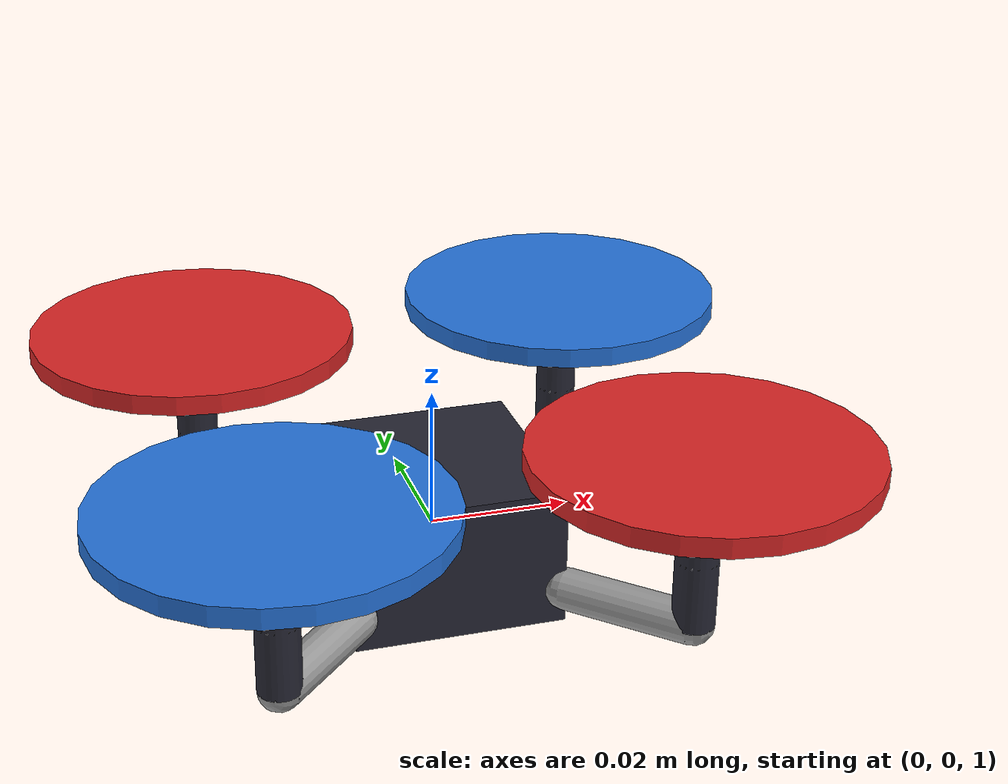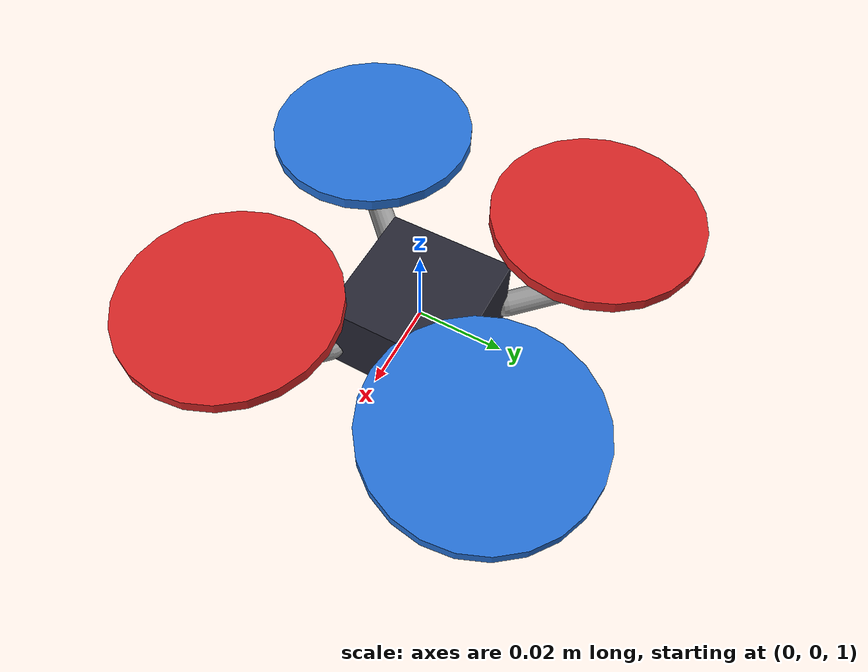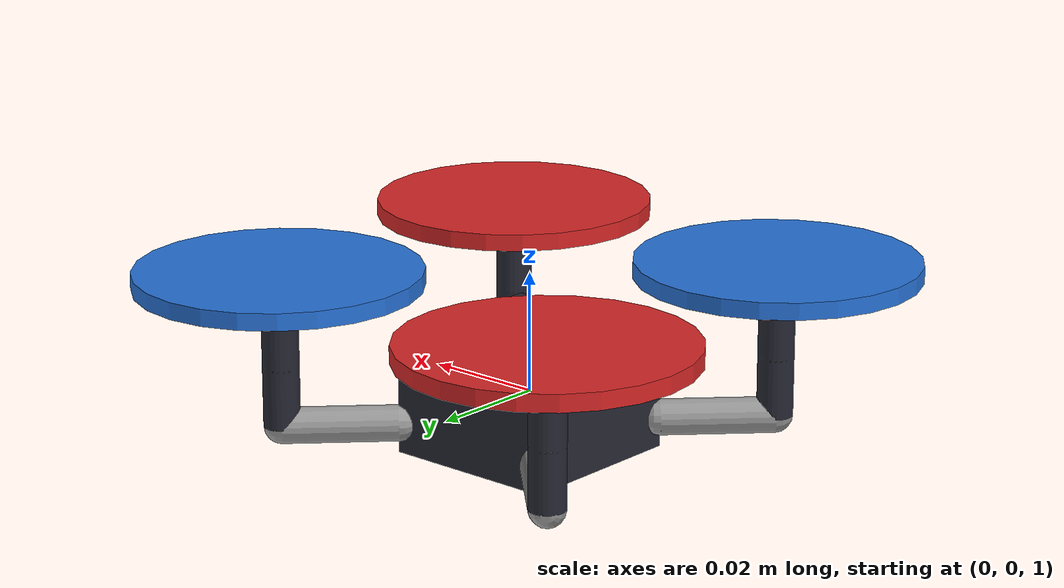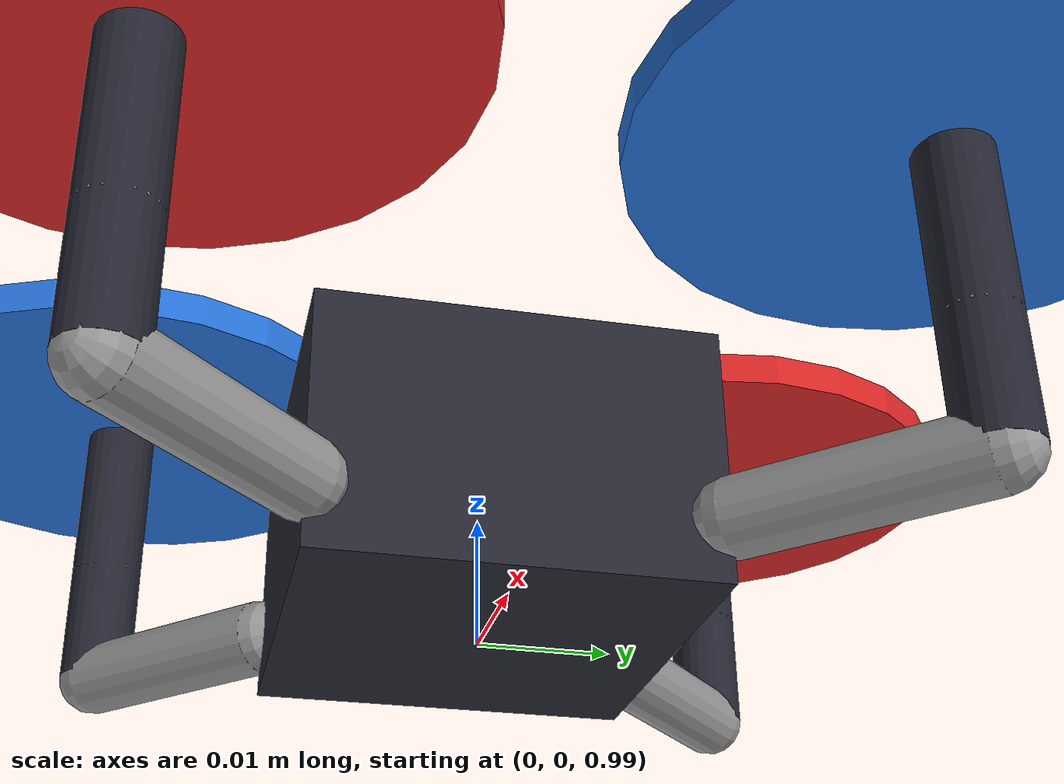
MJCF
<mujoco model="quadcopter">
  <compiler angle="degree" autolimits="true"/>
  <option timestep="0.002" gravity="0 0 -9.81" density="1.225" viscosity="1.8e-5" integrator="RK4"/>

  <asset>
    <texture type="skybox" builtin="gradient" rgb1="0.3 0.5 0.7" rgb2="0 0 0" width="512" height="512"/>
    <texture name="grid" type="2d" builtin="checker" rgb1="0.1 0.2 0.3" rgb2="0.2 0.3 0.4" width="300" height="300"/>
    <material name="grid" texture="grid" texrepeat="10 10" reflectance="0.2"/>
    <material name="body_mat" rgba="0.15 0.15 0.2 1"/>
    <material name="arm_mat" rgba="0.6 0.6 0.6 1"/>
    <material name="cw_mat" rgba="0.85 0.15 0.15 0.9"/>
    <material name="ccw_mat" rgba="0.15 0.45 0.85 0.9"/>
  </asset>

  <default>
    <default class="arm">
      <geom type="capsule" size="0.003" material="arm_mat" mass="0.002"/>
    </default>
    <default class="rotor">
      <geom type="cylinder" size="0.0235 0.0014" mass="0.0005" contype="0" conaffinity="0"/>
    </default>
    <default class="motor">
      <geom type="cylinder" size="0.003 0.013" mass="0.001" contype="0" conaffinity="0"/>
      <motor ctrlrange="0 1.5" ctrllimited="true"/>
    </default>
  </default>

  <worldbody>
    <light pos="0 0 6" dir="0 0 -1" diffuse="0.9 0.9 0.9"/>
    <geom name="floor" type="plane" size="15 15 0.1" material="grid"/>

    <body name="quad" pos="0 0 1">
      <freejoint name="root"/>
      <inertial pos="0 0 0" mass="0.029" diaginertia="1.4e-5 1.4e-5 2.17e-5"/>

      <geom name="core" type="box" size="0.015 0.015 0.01" material="body_mat"/>
      <site name="imu" pos="0 0 0" size="0.005"/>
      <camera name="chase" pos="-0.8 0 0.4" xyaxes="0 -1 0 0.4 0 1" mode="track"/>

      <!-- arms: layout, motor 1 front-right (CCW), 2 back-left (CCW), 3 front-left (CW), 4 back-right (CW) -->
      <geom class="arm" fromto="0.015 0.015 -0.005  0.028325 0.028325 -0.005"/>
      <geom class="arm" fromto="-0.015 -0.015 -0.005 -0.028325 -0.028325 -0.005"/>
      <geom class="arm" fromto="-0.015 0.015 -0.005 -0.028325  0.028325 -0.005"/>
      <geom class="arm" fromto="0.015 -0.015 -0.005  0.028325 -0.028325 -0.005"/>

      <site name="motor1" pos="0.028325  0.028325 0.005" size="0.003"/>
      <site name="motor2" pos="-0.028325 -0.028325 0.005" size="0.003"/>
      <site name="motor3" pos="-0.028325 0.028325 0.005" size="0.003"/>
      <site name="motor4" pos="0.028325 -0.028325 0.005" size="0.003"/>

      <geom class="rotor" pos="0.028325 0.028325 0.02" material="ccw_mat"/>
      <geom class="rotor" pos="-0.028325 -0.028325 0.02" material="ccw_mat"/>
      <geom class="rotor" pos="-0.028325 0.028325 0.02" material="cw_mat"/>
      <geom class="rotor" pos="0.028325 -0.028325 0.02" material="cw_mat"/>

      <geom class="motor" pos="0.028325 0.028325 0.008" material="body_mat"/>
      <geom class="motor" pos="-0.028325 -0.028325 0.008" material="body_mat"/>
      <geom class="motor" pos="-0.028325 0.028325 0.008" material="body_mat"/>
      <geom class="motor" pos="0.028325 -0.028325 0.008" material="body_mat"/>
    </body>
  </worldbody>

  <actuator>
    <!-- gear = [Fx Fy Fz Tx Ty Tz] in the site frame; Fz = thrust, Tz = reaction yaw torque -->
    <motor class="motor" name="thrust1" site="motor1" gear="0 0 1 0 0  0.07"/>
    <motor class="motor" name="thrust2" site="motor2" gear="0 0 1 0 0  0.07"/>
    <motor class="motor" name="thrust3" site="motor3" gear="0 0 1 0 0 -0.07"/>
    <motor class="motor" name="thrust4" site="motor4" gear="0 0 1 0 0 -0.07"/>
  </actuator>

  <sensor>
    <gyro name="gyro" site="imu"/>
    <accelerometer name="accel" site="imu"/>
    <framequat name="orientation" objtype="site" objname="imu"/>
    <framepos name="position" objtype="site" objname="imu"/>
    <framelinvel name="velocity" objtype="site" objname="imu"/>
  </sensor>
</mujoco>
